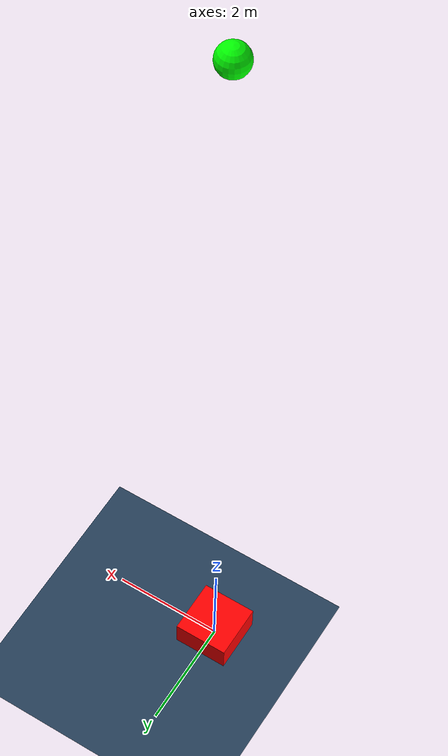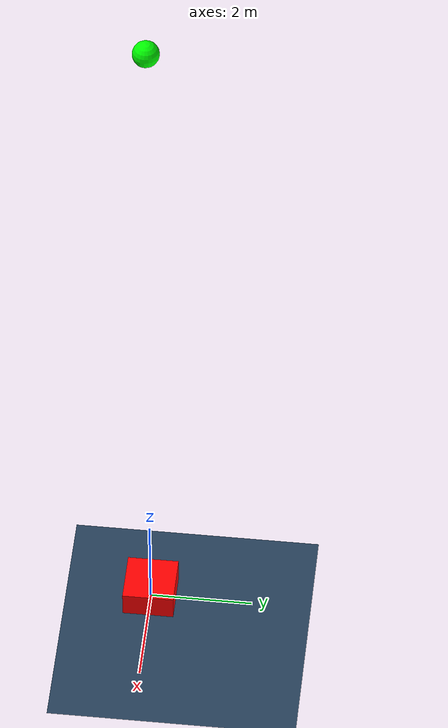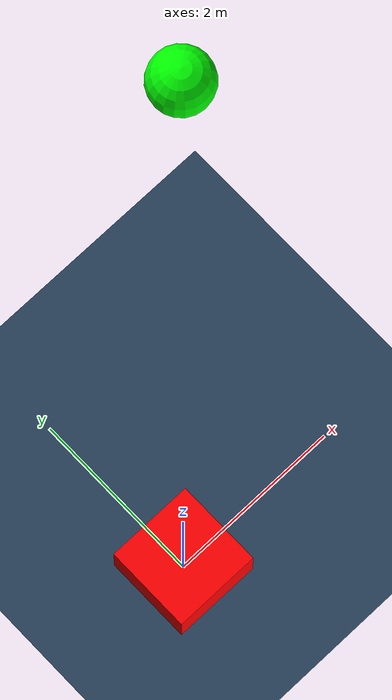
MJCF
<mujoco model="op3 scene">
  <include file="boxball.xml"/>

  <statistic center="0 0 0.2" extent="0.6"/>

  <visual>
    <headlight diffuse="0.6 0.6 0.6" ambient="0.3 0.3 0.3" specular="0 0 0"/>
    <rgba haze="0.15 0.25 0.35 1"/>
    <global azimuth="160" elevation="-20"/>
  </visual>

  <asset>
    <texture type="skybox" builtin="gradient" rgb1="0.3 0.5 0.7" rgb2="0 0 0" width="512" height="3072"/>
    <texture type="2d" name="groundplane" builtin="checker" mark="edge" rgb1="0.2 0.3 0.4" rgb2="0.1 0.2 0.3"
      markrgb="0.8 0.8 0.8" width="300" height="300"/>
    <material name="groundplane" texture="groundplane" texuniform="true" texrepeat="5 5" reflectance="0.2"/>
  </asset>

  <worldbody>
    <light pos="0 0 1.5" dir="0 0 -1" directional="true"/>
    <geom name="floor" size="0 0 0.05" type="plane" material="groundplane"/>
  </worldbody>
</mujoco>

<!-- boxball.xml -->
<mujoco>
    <option gravity="0 0 -9.8" />

    <asset>

        <texture type="skybox" builtin="gradient" rgb1="0 0 0" rgb2="0 0 0" width="512" height="512" />
        <texture name="body" type="cube" builtin="flat" mark="cross" width="127" height="1278" rgb1="0.8 0.6 0.4" rgb2="0.8 0.6 0.4" markrgb="1 1 1" random="0.01" />
        <material name="body" texture="body" texuniform="true" rgba="0.8 0.6 .4 1" />
        <texture name="grid" type="2d" builtin="checker" width="512" height="512" rgb1=".1 .2 .3" rgb2=".2 .3 .4" />
        <material name="grid" texture="grid" texrepeat="1 1" texuniform="true" reflectance=".2" />
    </asset>

    <worldbody>

        <geom name="floor" size="0 0 .05" type="plane" material="grid" condim="3" />

        <body name="box" pos="0 0 0">
            <geom name="box_geom" type="box" size="0.5 0.5 0.5" rgba="1 0 0 1" solref="0.02 1" friction="1.1 0.005 0.0001" />
        </body>

        <body name="ball" pos="0 0 15">
            <joint type="free" />
            <geom name="ball_geom" type="sphere" size="0.25" rgba="0 1 0 1" mass="10" solref="0.02 1" friction="1 1 0.0001" />
        </body>
    </worldbody>
</mujoco>
